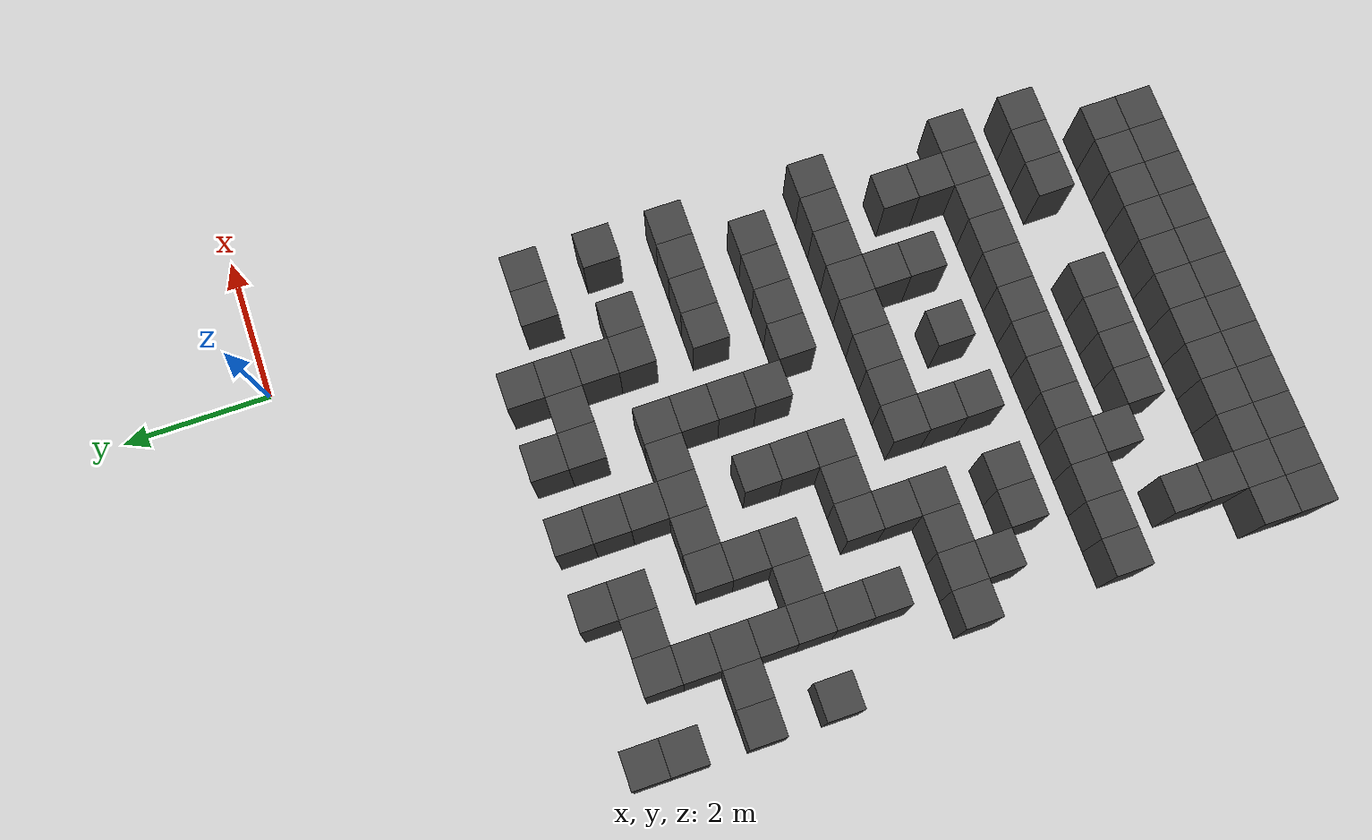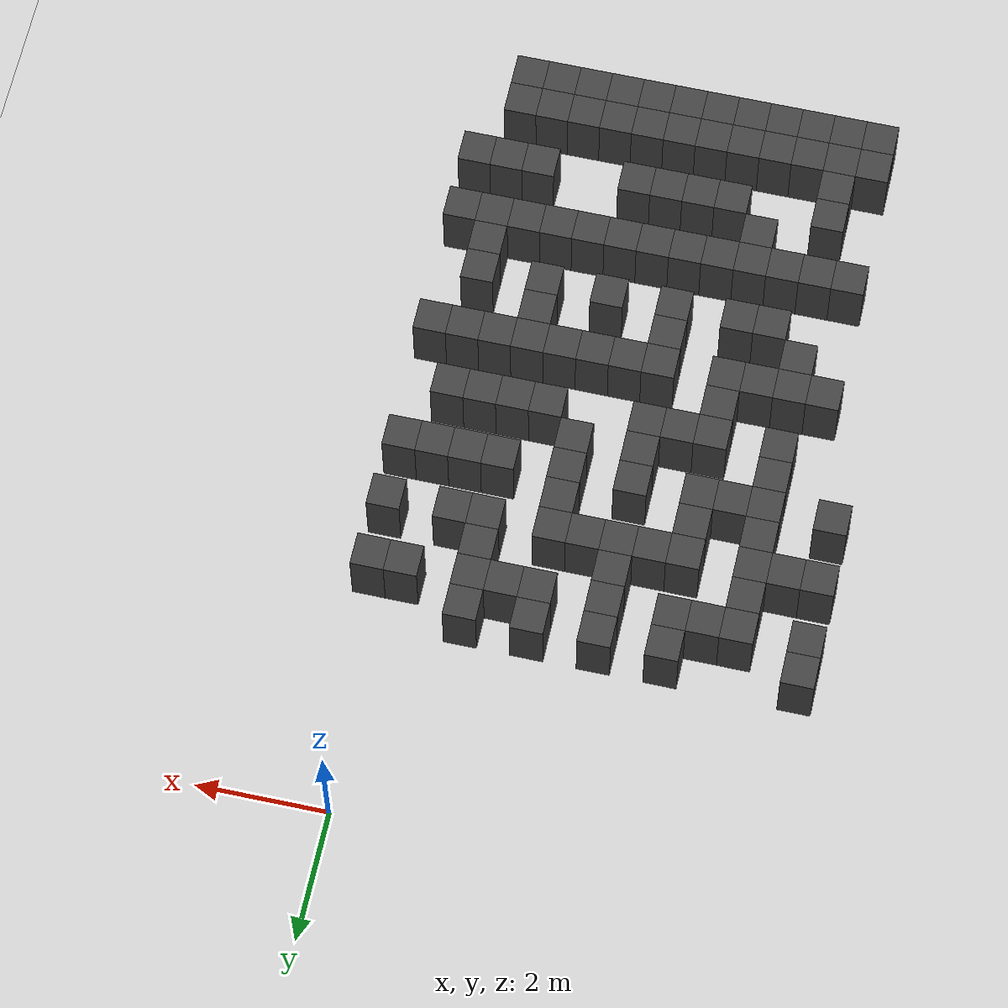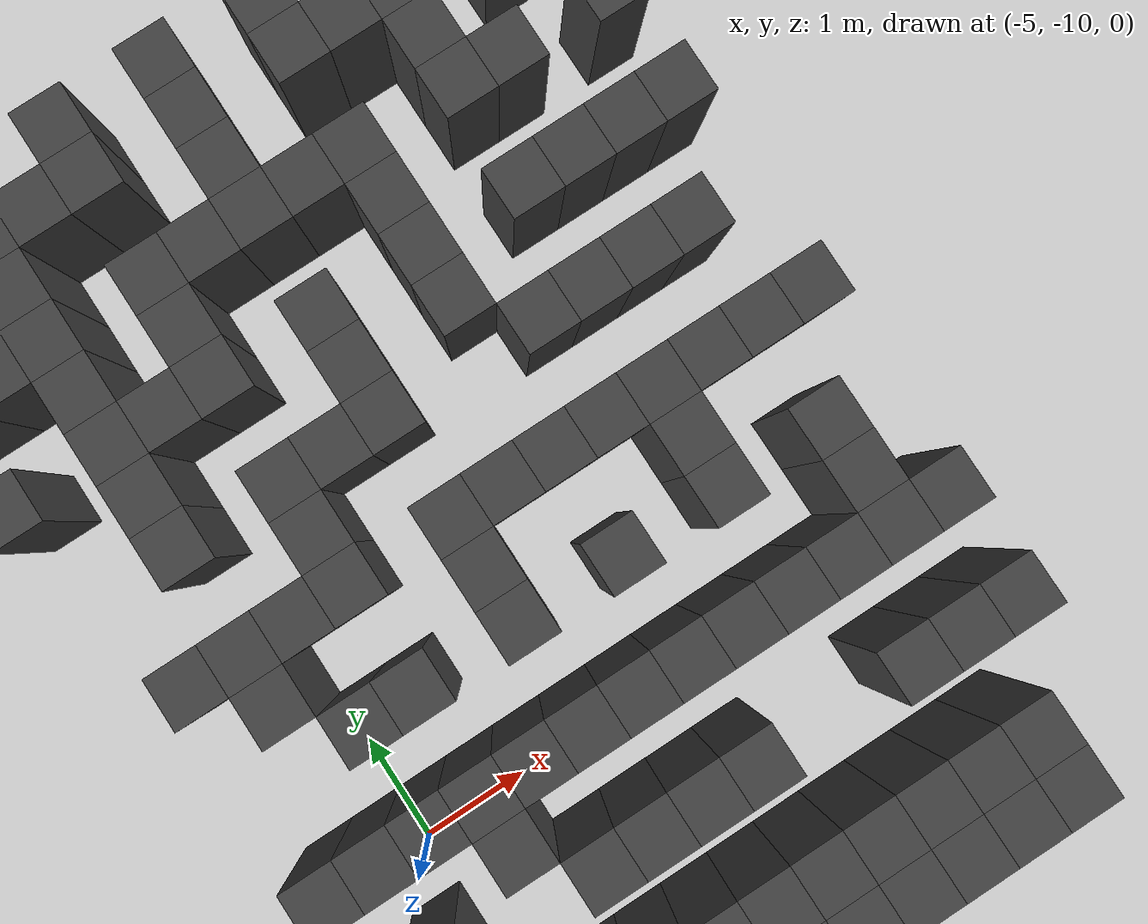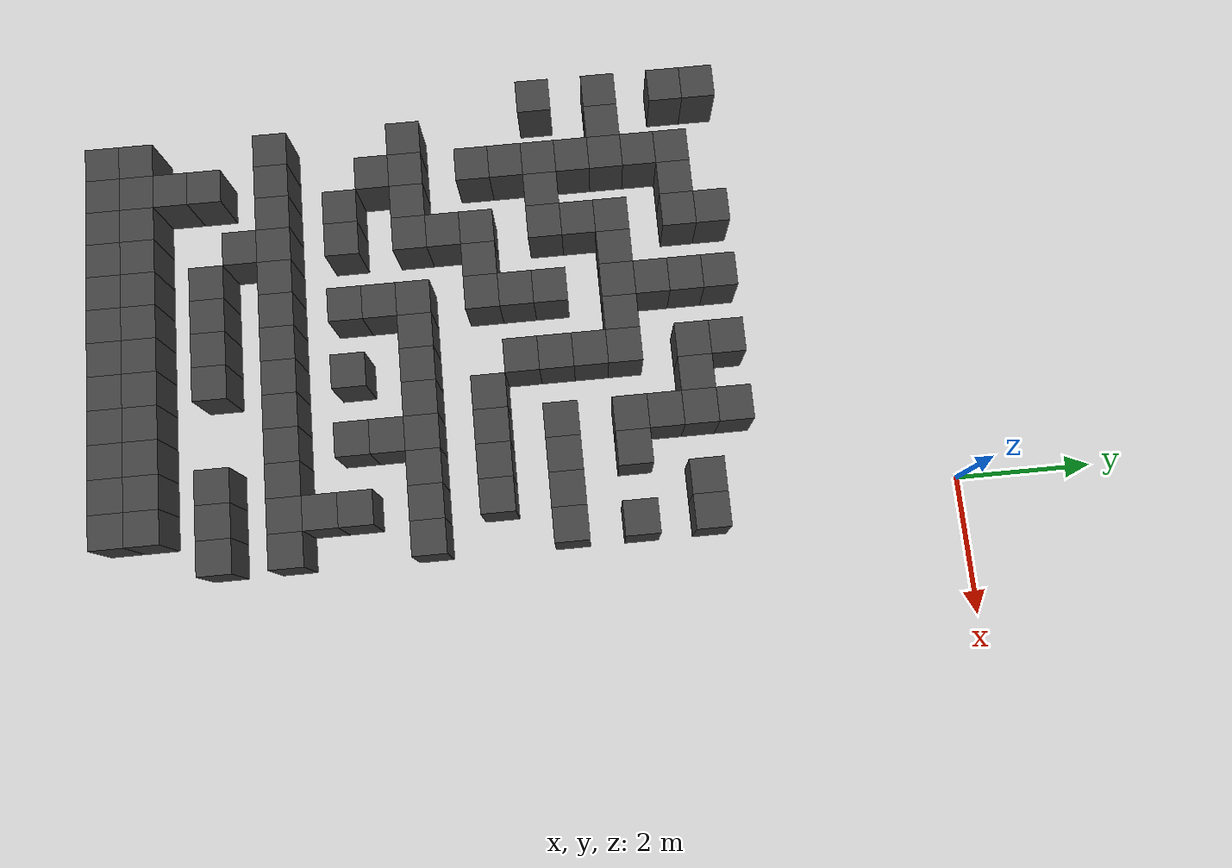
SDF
<sdf version="1.7">
 <world name="map_16048">
  <model name="ground_plane">
   <static>true</static>
   <link name="link">
    <collision name="collision">
     <geometry><plane><normal>0 0 1</normal><size>200 200</size></plane></geometry>
    </collision>
    <visual name="visual">
     <geometry><plane><normal>0 0 1</normal><size>200 200</size></plane></geometry>
     <material><ambient>0.8 0.8 0.8 1</ambient><diffuse>0.8 0.8 0.8 1</diffuse></material>
    </visual>
   </link>
  </model>
  <model name="maze_environment">
   <static>true</static>
   <link name="wall_751">
    <pose>-6.250 -3.250 0.500 0 0 0</pose>
    <collision name="col"><geometry><box><size>0.5 0.5 1.0</size></box></geometry></collision>
    <visual name="vis">
     <geometry><box><size>0.5 0.5 1.0</size></box></geometry>
     <material><ambient>0.15 0.15 0.15 1</ambient><diffuse>0.25 0.25 0.25 1</diffuse></material>
    </visual>
   </link>
   <link name="wall_752">
    <pose>-4.250 -3.250 0.500 0 0 0</pose>
    <collision name="col"><geometry><box><size>0.5 0.5 1.0</size></box></geometry></collision>
    <visual name="vis">
     <geometry><box><size>0.5 0.5 1.0</size></box></geometry>
     <material><ambient>0.15 0.15 0.15 1</ambient><diffuse>0.25 0.25 0.25 1</diffuse></material>
    </visual>
   </link>
   <link name="wall_753">
    <pose>-3.250 -3.250 0.500 0 0 0</pose>
    <collision name="col"><geometry><box><size>0.5 0.5 1.0</size></box></geometry></collision>
    <visual name="vis">
     <geometry><box><size>0.5 0.5 1.0</size></box></geometry>
     <material><ambient>0.15 0.15 0.15 1</ambient><diffuse>0.25 0.25 0.25 1</diffuse></material>
    </visual>
   </link>
   <link name="wall_754">
    <pose>-2.250 -3.250 0.500 0 0 0</pose>
    <collision name="col"><geometry><box><size>0.5 0.5 1.0</size></box></geometry></collision>
    <visual name="vis">
     <geometry><box><size>0.5 0.5 1.0</size></box></geometry>
     <material><ambient>0.15 0.15 0.15 1</ambient><diffuse>0.25 0.25 0.25 1</diffuse></material>
    </visual>
   </link>
   <link name="wall_755">
    <pose>-1.250 -3.250 0.500 0 0 0</pose>
    <collision name="col"><geometry><box><size>0.5 0.5 1.0</size></box></geometry></collision>
    <visual name="vis">
     <geometry><box><size>0.5 0.5 1.0</size></box></geometry>
     <material><ambient>0.15 0.15 0.15 1</ambient><diffuse>0.25 0.25 0.25 1</diffuse></material>
    </visual>
   </link>
   <link name="wall_768">
    <pose>-6.250 -3.750 0.500 0 0 0</pose>
    <collision name="col"><geometry><box><size>0.5 0.5 1.0</size></box></geometry></collision>
    <visual name="vis">
     <geometry><box><size>0.5 0.5 1.0</size></box></geometry>
     <material><ambient>0.15 0.15 0.15 1</ambient><diffuse>0.25 0.25 0.25 1</diffuse></material>
    </visual>
   </link>
   <link name="wall_769">
    <pose>-5.250 -3.750 0.500 0 0 0</pose>
    <collision name="col"><geometry><box><size>0.5 0.5 1.0</size></box></geometry></collision>
    <visual name="vis">
     <geometry><box><size>0.5 0.5 1.0</size></box></geometry>
     <material><ambient>0.15 0.15 0.15 1</ambient><diffuse>0.25 0.25 0.25 1</diffuse></material>
    </visual>
   </link>
   <link name="wall_770">
    <pose>-4.750 -3.750 0.500 0 0 0</pose>
    <collision name="col"><geometry><box><size>0.5 0.5 1.0</size></box></geometry></collision>
    <visual name="vis">
     <geometry><box><size>0.5 0.5 1.0</size></box></geometry>
     <material><ambient>0.15 0.15 0.15 1</ambient><diffuse>0.25 0.25 0.25 1</diffuse></material>
    </visual>
   </link>
   <link name="wall_771">
    <pose>-4.250 -3.750 0.500 0 0 0</pose>
    <collision name="col"><geometry><box><size>0.5 0.5 1.0</size></box></geometry></collision>
    <visual name="vis">
     <geometry><box><size>0.5 0.5 1.0</size></box></geometry>
     <material><ambient>0.15 0.15 0.15 1</ambient><diffuse>0.25 0.25 0.25 1</diffuse></material>
    </visual>
   </link>
   <link name="wall_772">
    <pose>-3.250 -3.750 0.500 0 0 0</pose>
    <collision name="col"><geometry><box><size>0.5 0.5 1.0</size></box></geometry></collision>
    <visual name="vis">
     <geometry><box><size>0.5 0.5 1.0</size></box></geometry>
     <material><ambient>0.15 0.15 0.15 1</ambient><diffuse>0.25 0.25 0.25 1</diffuse></material>
    </visual>
   </link>
   <link name="wall_773">
    <pose>-2.250 -3.750 0.500 0 0 0</pose>
    <collision name="col"><geometry><box><size>0.5 0.5 1.0</size></box></geometry></collision>
    <visual name="vis">
     <geometry><box><size>0.5 0.5 1.0</size></box></geometry>
     <material><ambient>0.15 0.15 0.15 1</ambient><diffuse>0.25 0.25 0.25 1</diffuse></material>
    </visual>
   </link>
   <link name="wall_774">
    <pose>-1.750 -3.750 0.500 0 0 0</pose>
    <collision name="col"><geometry><box><size>0.5 0.5 1.0</size></box></geometry></collision>
    <visual name="vis">
     <geometry><box><size>0.5 0.5 1.0</size></box></geometry>
     <material><ambient>0.15 0.15 0.15 1</ambient><diffuse>0.25 0.25 0.25 1</diffuse></material>
    </visual>
   </link>
   <link name="wall_775">
    <pose>-1.250 -3.750 0.500 0 0 0</pose>
    <collision name="col"><geometry><box><size>0.5 0.5 1.0</size></box></geometry></collision>
    <visual name="vis">
     <geometry><box><size>0.5 0.5 1.0</size></box></geometry>
     <material><ambient>0.15 0.15 0.15 1</ambient><diffuse>0.25 0.25 0.25 1</diffuse></material>
    </visual>
   </link>
   <link name="wall_776">
    <pose>-0.250 -3.750 0.500 0 0 0</pose>
    <collision name="col"><geometry><box><size>0.5 0.5 1.0</size></box></geometry></collision>
    <visual name="vis">
     <geometry><box><size>0.5 0.5 1.0</size></box></geometry>
     <material><ambient>0.15 0.15 0.15 1</ambient><diffuse>0.25 0.25 0.25 1</diffuse></material>
    </visual>
   </link>
   <link name="wall_777">
    <pose>0.250 -3.750 0.500 0 0 0</pose>
    <collision name="col"><geometry><box><size>0.5 0.5 1.0</size></box></geometry></collision>
    <visual name="vis">
     <geometry><box><size>0.5 0.5 1.0</size></box></geometry>
     <material><ambient>0.15 0.15 0.15 1</ambient><diffuse>0.25 0.25 0.25 1</diffuse></material>
    </visual>
   </link>
   <link name="wall_799">
    <pose>-5.250 -4.250 0.500 0 0 0</pose>
    <collision name="col"><geometry><box><size>0.5 0.5 1.0</size></box></geometry></collision>
    <visual name="vis">
     <geometry><box><size>0.5 0.5 1.0</size></box></geometry>
     <material><ambient>0.15 0.15 0.15 1</ambient><diffuse>0.25 0.25 0.25 1</diffuse></material>
    </visual>
   </link>
   <link name="wall_800">
    <pose>-3.250 -4.250 0.500 0 0 0</pose>
    <collision name="col"><geometry><box><size>0.5 0.5 1.0</size></box></geometry></collision>
    <visual name="vis">
     <geometry><box><size>0.5 0.5 1.0</size></box></geometry>
     <material><ambient>0.15 0.15 0.15 1</ambient><diffuse>0.25 0.25 0.25 1</diffuse></material>
    </visual>
   </link>
   <link name="wall_801">
    <pose>-1.250 -4.250 0.500 0 0 0</pose>
    <collision name="col"><geometry><box><size>0.5 0.5 1.0</size></box></geometry></collision>
    <visual name="vis">
     <geometry><box><size>0.5 0.5 1.0</size></box></geometry>
     <material><ambient>0.15 0.15 0.15 1</ambient><diffuse>0.25 0.25 0.25 1</diffuse></material>
    </visual>
   </link>
   <link name="wall_816">
    <pose>-6.250 -4.750 0.500 0 0 0</pose>
    <collision name="col"><geometry><box><size>0.5 0.5 1.0</size></box></geometry></collision>
    <visual name="vis">
     <geometry><box><size>0.5 0.5 1.0</size></box></geometry>
     <material><ambient>0.15 0.15 0.15 1</ambient><diffuse>0.25 0.25 0.25 1</diffuse></material>
    </visual>
   </link>
   <link name="wall_817">
    <pose>-5.750 -4.750 0.500 0 0 0</pose>
    <collision name="col"><geometry><box><size>0.5 0.5 1.0</size></box></geometry></collision>
    <visual name="vis">
     <geometry><box><size>0.5 0.5 1.0</size></box></geometry>
     <material><ambient>0.15 0.15 0.15 1</ambient><diffuse>0.25 0.25 0.25 1</diffuse></material>
    </visual>
   </link>
   <link name="wall_818">
    <pose>-5.250 -4.750 0.500 0 0 0</pose>
    <collision name="col"><geometry><box><size>0.5 0.5 1.0</size></box></geometry></collision>
    <visual name="vis">
     <geometry><box><size>0.5 0.5 1.0</size></box></geometry>
     <material><ambient>0.15 0.15 0.15 1</ambient><diffuse>0.25 0.25 0.25 1</diffuse></material>
    </visual>
   </link>
   <link name="wall_819">
    <pose>-4.250 -4.750 0.500 0 0 0</pose>
    <collision name="col"><geometry><box><size>0.5 0.5 1.0</size></box></geometry></collision>
    <visual name="vis">
     <geometry><box><size>0.5 0.5 1.0</size></box></geometry>
     <material><ambient>0.15 0.15 0.15 1</ambient><diffuse>0.25 0.25 0.25 1</diffuse></material>
    </visual>
   </link>
   <link name="wall_820">
    <pose>-3.750 -4.750 0.500 0 0 0</pose>
    <collision name="col"><geometry><box><size>0.5 0.5 1.0</size></box></geometry></collision>
    <visual name="vis">
     <geometry><box><size>0.5 0.5 1.0</size></box></geometry>
     <material><ambient>0.15 0.15 0.15 1</ambient><diffuse>0.25 0.25 0.25 1</diffuse></material>
    </visual>
   </link>
   <link name="wall_821">
    <pose>-3.250 -4.750 0.500 0 0 0</pose>
    <collision name="col"><geometry><box><size>0.5 0.5 1.0</size></box></geometry></collision>
    <visual name="vis">
     <geometry><box><size>0.5 0.5 1.0</size></box></geometry>
     <material><ambient>0.15 0.15 0.15 1</ambient><diffuse>0.25 0.25 0.25 1</diffuse></material>
    </visual>
   </link>
   <link name="wall_822">
    <pose>-2.750 -4.750 0.500 0 0 0</pose>
    <collision name="col"><geometry><box><size>0.5 0.5 1.0</size></box></geometry></collision>
    <visual name="vis">
     <geometry><box><size>0.5 0.5 1.0</size></box></geometry>
     <material><ambient>0.15 0.15 0.15 1</ambient><diffuse>0.25 0.25 0.25 1</diffuse></material>
    </visual>
   </link>
   <link name="wall_823">
    <pose>-2.250 -4.750 0.500 0 0 0</pose>
    <collision name="col"><geometry><box><size>0.5 0.5 1.0</size></box></geometry></collision>
    <visual name="vis">
     <geometry><box><size>0.5 0.5 1.0</size></box></geometry>
     <material><ambient>0.15 0.15 0.15 1</ambient><diffuse>0.25 0.25 0.25 1</diffuse></material>
    </visual>
   </link>
   <link name="wall_824">
    <pose>-1.250 -4.750 0.500 0 0 0</pose>
    <collision name="col"><geometry><box><size>0.5 0.5 1.0</size></box></geometry></collision>
    <visual name="vis">
     <geometry><box><size>0.5 0.5 1.0</size></box></geometry>
     <material><ambient>0.15 0.15 0.15 1</ambient><diffuse>0.25 0.25 0.25 1</diffuse></material>
    </visual>
   </link>
   <link name="wall_825">
    <pose>-0.750 -4.750 0.500 0 0 0</pose>
    <collision name="col"><geometry><box><size>0.5 0.5 1.0</size></box></geometry></collision>
    <visual name="vis">
     <geometry><box><size>0.5 0.5 1.0</size></box></geometry>
     <material><ambient>0.15 0.15 0.15 1</ambient><diffuse>0.25 0.25 0.25 1</diffuse></material>
    </visual>
   </link>
   <link name="wall_826">
    <pose>0.250 -4.750 0.500 0 0 0</pose>
    <collision name="col"><geometry><box><size>0.5 0.5 1.0</size></box></geometry></collision>
    <visual name="vis">
     <geometry><box><size>0.5 0.5 1.0</size></box></geometry>
     <material><ambient>0.15 0.15 0.15 1</ambient><diffuse>0.25 0.25 0.25 1</diffuse></material>
    </visual>
   </link>
   <link name="wall_847">
    <pose>-5.250 -5.250 0.500 0 0 0</pose>
    <collision name="col"><geometry><box><size>0.5 0.5 1.0</size></box></geometry></collision>
    <visual name="vis">
     <geometry><box><size>0.5 0.5 1.0</size></box></geometry>
     <material><ambient>0.15 0.15 0.15 1</ambient><diffuse>0.25 0.25 0.25 1</diffuse></material>
    </visual>
   </link>
   <link name="wall_848">
    <pose>-4.250 -5.250 0.500 0 0 0</pose>
    <collision name="col"><geometry><box><size>0.5 0.5 1.0</size></box></geometry></collision>
    <visual name="vis">
     <geometry><box><size>0.5 0.5 1.0</size></box></geometry>
     <material><ambient>0.15 0.15 0.15 1</ambient><diffuse>0.25 0.25 0.25 1</diffuse></material>
    </visual>
   </link>
   <link name="wall_849">
    <pose>-2.250 -5.250 0.500 0 0 0</pose>
    <collision name="col"><geometry><box><size>0.5 0.5 1.0</size></box></geometry></collision>
    <visual name="vis">
     <geometry><box><size>0.5 0.5 1.0</size></box></geometry>
     <material><ambient>0.15 0.15 0.15 1</ambient><diffuse>0.25 0.25 0.25 1</diffuse></material>
    </visual>
   </link>
   <link name="wall_863">
    <pose>-6.250 -5.750 0.500 0 0 0</pose>
    <collision name="col"><geometry><box><size>0.5 0.5 1.0</size></box></geometry></collision>
    <visual name="vis">
     <geometry><box><size>0.5 0.5 1.0</size></box></geometry>
     <material><ambient>0.15 0.15 0.15 1</ambient><diffuse>0.25 0.25 0.25 1</diffuse></material>
    </visual>
   </link>
   <link name="wall_864">
    <pose>-5.250 -5.750 0.500 0 0 0</pose>
    <collision name="col"><geometry><box><size>0.5 0.5 1.0</size></box></geometry></collision>
    <visual name="vis">
     <geometry><box><size>0.5 0.5 1.0</size></box></geometry>
     <material><ambient>0.15 0.15 0.15 1</ambient><diffuse>0.25 0.25 0.25 1</diffuse></material>
    </visual>
   </link>
   <link name="wall_865">
    <pose>-4.750 -5.750 0.500 0 0 0</pose>
    <collision name="col"><geometry><box><size>0.5 0.5 1.0</size></box></geometry></collision>
    <visual name="vis">
     <geometry><box><size>0.5 0.5 1.0</size></box></geometry>
     <material><ambient>0.15 0.15 0.15 1</ambient><diffuse>0.25 0.25 0.25 1</diffuse></material>
    </visual>
   </link>
   <link name="wall_866">
    <pose>-4.250 -5.750 0.500 0 0 0</pose>
    <collision name="col"><geometry><box><size>0.5 0.5 1.0</size></box></geometry></collision>
    <visual name="vis">
     <geometry><box><size>0.5 0.5 1.0</size></box></geometry>
     <material><ambient>0.15 0.15 0.15 1</ambient><diffuse>0.25 0.25 0.25 1</diffuse></material>
    </visual>
   </link>
   <link name="wall_867">
    <pose>-3.250 -5.750 0.500 0 0 0</pose>
    <collision name="col"><geometry><box><size>0.5 0.5 1.0</size></box></geometry></collision>
    <visual name="vis">
     <geometry><box><size>0.5 0.5 1.0</size></box></geometry>
     <material><ambient>0.15 0.15 0.15 1</ambient><diffuse>0.25 0.25 0.25 1</diffuse></material>
    </visual>
   </link>
   <link name="wall_868">
    <pose>-2.250 -5.750 0.500 0 0 0</pose>
    <collision name="col"><geometry><box><size>0.5 0.5 1.0</size></box></geometry></collision>
    <visual name="vis">
     <geometry><box><size>0.5 0.5 1.0</size></box></geometry>
     <material><ambient>0.15 0.15 0.15 1</ambient><diffuse>0.25 0.25 0.25 1</diffuse></material>
    </visual>
   </link>
   <link name="wall_869">
    <pose>-1.250 -5.750 0.500 0 0 0</pose>
    <collision name="col"><geometry><box><size>0.5 0.5 1.0</size></box></geometry></collision>
    <visual name="vis">
     <geometry><box><size>0.5 0.5 1.0</size></box></geometry>
     <material><ambient>0.15 0.15 0.15 1</ambient><diffuse>0.25 0.25 0.25 1</diffuse></material>
    </visual>
   </link>
   <link name="wall_870">
    <pose>-0.750 -5.750 0.500 0 0 0</pose>
    <collision name="col"><geometry><box><size>0.5 0.5 1.0</size></box></geometry></collision>
    <visual name="vis">
     <geometry><box><size>0.5 0.5 1.0</size></box></geometry>
     <material><ambient>0.15 0.15 0.15 1</ambient><diffuse>0.25 0.25 0.25 1</diffuse></material>
    </visual>
   </link>
   <link name="wall_871">
    <pose>-0.250 -5.750 0.500 0 0 0</pose>
    <collision name="col"><geometry><box><size>0.5 0.5 1.0</size></box></geometry></collision>
    <visual name="vis">
     <geometry><box><size>0.5 0.5 1.0</size></box></geometry>
     <material><ambient>0.15 0.15 0.15 1</ambient><diffuse>0.25 0.25 0.25 1</diffuse></material>
    </visual>
   </link>
   <link name="wall_872">
    <pose>0.250 -5.750 0.500 0 0 0</pose>
    <collision name="col"><geometry><box><size>0.5 0.5 1.0</size></box></geometry></collision>
    <visual name="vis">
     <geometry><box><size>0.5 0.5 1.0</size></box></geometry>
     <material><ambient>0.15 0.15 0.15 1</ambient><diffuse>0.25 0.25 0.25 1</diffuse></material>
    </visual>
   </link>
   <link name="wall_895">
    <pose>-5.250 -6.250 0.500 0 0 0</pose>
    <collision name="col"><geometry><box><size>0.5 0.5 1.0</size></box></geometry></collision>
    <visual name="vis">
     <geometry><box><size>0.5 0.5 1.0</size></box></geometry>
     <material><ambient>0.15 0.15 0.15 1</ambient><diffuse>0.25 0.25 0.25 1</diffuse></material>
    </visual>
   </link>
   <link name="wall_896">
    <pose>-3.250 -6.250 0.500 0 0 0</pose>
    <collision name="col"><geometry><box><size>0.5 0.5 1.0</size></box></geometry></collision>
    <visual name="vis">
     <geometry><box><size>0.5 0.5 1.0</size></box></geometry>
     <material><ambient>0.15 0.15 0.15 1</ambient><diffuse>0.25 0.25 0.25 1</diffuse></material>
    </visual>
   </link>
   <link name="wall_897">
    <pose>-2.250 -6.250 0.500 0 0 0</pose>
    <collision name="col"><geometry><box><size>0.5 0.5 1.0</size></box></geometry></collision>
    <visual name="vis">
     <geometry><box><size>0.5 0.5 1.0</size></box></geometry>
     <material><ambient>0.15 0.15 0.15 1</ambient><diffuse>0.25 0.25 0.25 1</diffuse></material>
    </visual>
   </link>
   <link name="wall_912">
    <pose>-5.250 -6.750 0.500 0 0 0</pose>
    <collision name="col"><geometry><box><size>0.5 0.5 1.0</size></box></geometry></collision>
    <visual name="vis">
     <geometry><box><size>0.5 0.5 1.0</size></box></geometry>
     <material><ambient>0.15 0.15 0.15 1</ambient><diffuse>0.25 0.25 0.25 1</diffuse></material>
    </visual>
   </link>
   <link name="wall_913">
    <pose>-4.250 -6.750 0.500 0 0 0</pose>
    <collision name="col"><geometry><box><size>0.5 0.5 1.0</size></box></geometry></collision>
    <visual name="vis">
     <geometry><box><size>0.5 0.5 1.0</size></box></geometry>
     <material><ambient>0.15 0.15 0.15 1</ambient><diffuse>0.25 0.25 0.25 1</diffuse></material>
    </visual>
   </link>
   <link name="wall_914">
    <pose>-3.750 -6.750 0.500 0 0 0</pose>
    <collision name="col"><geometry><box><size>0.5 0.5 1.0</size></box></geometry></collision>
    <visual name="vis">
     <geometry><box><size>0.5 0.5 1.0</size></box></geometry>
     <material><ambient>0.15 0.15 0.15 1</ambient><diffuse>0.25 0.25 0.25 1</diffuse></material>
    </visual>
   </link>
   <link name="wall_915">
    <pose>-3.250 -6.750 0.500 0 0 0</pose>
    <collision name="col"><geometry><box><size>0.5 0.5 1.0</size></box></geometry></collision>
    <visual name="vis">
     <geometry><box><size>0.5 0.5 1.0</size></box></geometry>
     <material><ambient>0.15 0.15 0.15 1</ambient><diffuse>0.25 0.25 0.25 1</diffuse></material>
    </visual>
   </link>
   <link name="wall_916">
    <pose>-1.750 -6.750 0.500 0 0 0</pose>
    <collision name="col"><geometry><box><size>0.5 0.5 1.0</size></box></geometry></collision>
    <visual name="vis">
     <geometry><box><size>0.5 0.5 1.0</size></box></geometry>
     <material><ambient>0.15 0.15 0.15 1</ambient><diffuse>0.25 0.25 0.25 1</diffuse></material>
    </visual>
   </link>
   <link name="wall_917">
    <pose>-1.250 -6.750 0.500 0 0 0</pose>
    <collision name="col"><geometry><box><size>0.5 0.5 1.0</size></box></geometry></collision>
    <visual name="vis">
     <geometry><box><size>0.5 0.5 1.0</size></box></geometry>
     <material><ambient>0.15 0.15 0.15 1</ambient><diffuse>0.25 0.25 0.25 1</diffuse></material>
    </visual>
   </link>
   <link name="wall_918">
    <pose>-0.750 -6.750 0.500 0 0 0</pose>
    <collision name="col"><geometry><box><size>0.5 0.5 1.0</size></box></geometry></collision>
    <visual name="vis">
     <geometry><box><size>0.5 0.5 1.0</size></box></geometry>
     <material><ambient>0.15 0.15 0.15 1</ambient><diffuse>0.25 0.25 0.25 1</diffuse></material>
    </visual>
   </link>
   <link name="wall_919">
    <pose>-0.250 -6.750 0.500 0 0 0</pose>
    <collision name="col"><geometry><box><size>0.5 0.5 1.0</size></box></geometry></collision>
    <visual name="vis">
     <geometry><box><size>0.5 0.5 1.0</size></box></geometry>
     <material><ambient>0.15 0.15 0.15 1</ambient><diffuse>0.25 0.25 0.25 1</diffuse></material>
    </visual>
   </link>
   <link name="wall_938">
    <pose>-4.250 -7.250 0.500 0 0 0</pose>
    <collision name="col"><geometry><box><size>0.5 0.5 1.0</size></box></geometry></collision>
    <visual name="vis">
     <geometry><box><size>0.5 0.5 1.0</size></box></geometry>
     <material><ambient>0.15 0.15 0.15 1</ambient><diffuse>0.25 0.25 0.25 1</diffuse></material>
    </visual>
   </link>
   <link name="wall_954">
    <pose>-5.750 -7.750 0.500 0 0 0</pose>
    <collision name="col"><geometry><box><size>0.5 0.5 1.0</size></box></geometry></collision>
    <visual name="vis">
     <geometry><box><size>0.5 0.5 1.0</size></box></geometry>
     <material><ambient>0.15 0.15 0.15 1</ambient><diffuse>0.25 0.25 0.25 1</diffuse></material>
    </visual>
   </link>
   <link name="wall_955">
    <pose>-5.250 -7.750 0.500 0 0 0</pose>
    <collision name="col"><geometry><box><size>0.5 0.5 1.0</size></box></geometry></collision>
    <visual name="vis">
     <geometry><box><size>0.5 0.5 1.0</size></box></geometry>
     <material><ambient>0.15 0.15 0.15 1</ambient><diffuse>0.25 0.25 0.25 1</diffuse></material>
    </visual>
   </link>
   <link name="wall_956">
    <pose>-4.750 -7.750 0.500 0 0 0</pose>
    <collision name="col"><geometry><box><size>0.5 0.5 1.0</size></box></geometry></collision>
    <visual name="vis">
     <geometry><box><size>0.5 0.5 1.0</size></box></geometry>
     <material><ambient>0.15 0.15 0.15 1</ambient><diffuse>0.25 0.25 0.25 1</diffuse></material>
    </visual>
   </link>
   <link name="wall_957">
    <pose>-4.250 -7.750 0.500 0 0 0</pose>
    <collision name="col"><geometry><box><size>0.5 0.5 1.0</size></box></geometry></collision>
    <visual name="vis">
     <geometry><box><size>0.5 0.5 1.0</size></box></geometry>
     <material><ambient>0.15 0.15 0.15 1</ambient><diffuse>0.25 0.25 0.25 1</diffuse></material>
    </visual>
   </link>
   <link name="wall_958">
    <pose>-3.250 -7.750 0.500 0 0 0</pose>
    <collision name="col"><geometry><box><size>0.5 0.5 1.0</size></box></geometry></collision>
    <visual name="vis">
     <geometry><box><size>0.5 0.5 1.0</size></box></geometry>
     <material><ambient>0.15 0.15 0.15 1</ambient><diffuse>0.25 0.25 0.25 1</diffuse></material>
    </visual>
   </link>
   <link name="wall_959">
    <pose>-2.750 -7.750 0.500 0 0 0</pose>
    <collision name="col"><geometry><box><size>0.5 0.5 1.0</size></box></geometry></collision>
    <visual name="vis">
     <geometry><box><size>0.5 0.5 1.0</size></box></geometry>
     <material><ambient>0.15 0.15 0.15 1</ambient><diffuse>0.25 0.25 0.25 1</diffuse></material>
    </visual>
   </link>
   <link name="wall_960">
    <pose>-2.250 -7.750 0.500 0 0 0</pose>
    <collision name="col"><geometry><box><size>0.5 0.5 1.0</size></box></geometry></collision>
    <visual name="vis">
     <geometry><box><size>0.5 0.5 1.0</size></box></geometry>
     <material><ambient>0.15 0.15 0.15 1</ambient><diffuse>0.25 0.25 0.25 1</diffuse></material>
    </visual>
   </link>
   <link name="wall_961">
    <pose>-1.750 -7.750 0.500 0 0 0</pose>
    <collision name="col"><geometry><box><size>0.5 0.5 1.0</size></box></geometry></collision>
    <visual name="vis">
     <geometry><box><size>0.5 0.5 1.0</size></box></geometry>
     <material><ambient>0.15 0.15 0.15 1</ambient><diffuse>0.25 0.25 0.25 1</diffuse></material>
    </visual>
   </link>
   <link name="wall_962">
    <pose>-1.250 -7.750 0.500 0 0 0</pose>
    <collision name="col"><geometry><box><size>0.5 0.5 1.0</size></box></geometry></collision>
    <visual name="vis">
     <geometry><box><size>0.5 0.5 1.0</size></box></geometry>
     <material><ambient>0.15 0.15 0.15 1</ambient><diffuse>0.25 0.25 0.25 1</diffuse></material>
    </visual>
   </link>
   <link name="wall_963">
    <pose>-0.750 -7.750 0.500 0 0 0</pose>
    <collision name="col"><geometry><box><size>0.5 0.5 1.0</size></box></geometry></collision>
    <visual name="vis">
     <geometry><box><size>0.5 0.5 1.0</size></box></geometry>
     <material><ambient>0.15 0.15 0.15 1</ambient><diffuse>0.25 0.25 0.25 1</diffuse></material>
    </visual>
   </link>
   <link name="wall_964">
    <pose>-0.250 -7.750 0.500 0 0 0</pose>
    <collision name="col"><geometry><box><size>0.5 0.5 1.0</size></box></geometry></collision>
    <visual name="vis">
     <geometry><box><size>0.5 0.5 1.0</size></box></geometry>
     <material><ambient>0.15 0.15 0.15 1</ambient><diffuse>0.25 0.25 0.25 1</diffuse></material>
    </visual>
   </link>
   <link name="wall_965">
    <pose>0.250 -7.750 0.500 0 0 0</pose>
    <collision name="col"><geometry><box><size>0.5 0.5 1.0</size></box></geometry></collision>
    <visual name="vis">
     <geometry><box><size>0.5 0.5 1.0</size></box></geometry>
     <material><ambient>0.15 0.15 0.15 1</ambient><diffuse>0.25 0.25 0.25 1</diffuse></material>
    </visual>
   </link>
   <link name="wall_984">
    <pose>-5.250 -8.250 0.500 0 0 0</pose>
    <collision name="col"><geometry><box><size>0.5 0.5 1.0</size></box></geometry></collision>
    <visual name="vis">
     <geometry><box><size>0.5 0.5 1.0</size></box></geometry>
     <material><ambient>0.15 0.15 0.15 1</ambient><diffuse>0.25 0.25 0.25 1</diffuse></material>
    </visual>
   </link>
   <link name="wall_985">
    <pose>-3.250 -8.250 0.500 0 0 0</pose>
    <collision name="col"><geometry><box><size>0.5 0.5 1.0</size></box></geometry></collision>
    <visual name="vis">
     <geometry><box><size>0.5 0.5 1.0</size></box></geometry>
     <material><ambient>0.15 0.15 0.15 1</ambient><diffuse>0.25 0.25 0.25 1</diffuse></material>
    </visual>
   </link>
   <link name="wall_986">
    <pose>-1.250 -8.250 0.500 0 0 0</pose>
    <collision name="col"><geometry><box><size>0.5 0.5 1.0</size></box></geometry></collision>
    <visual name="vis">
     <geometry><box><size>0.5 0.5 1.0</size></box></geometry>
     <material><ambient>0.15 0.15 0.15 1</ambient><diffuse>0.25 0.25 0.25 1</diffuse></material>
    </visual>
   </link>
   <link name="wall_1005">
    <pose>-4.750 -8.750 0.500 0 0 0</pose>
    <collision name="col"><geometry><box><size>0.5 0.5 1.0</size></box></geometry></collision>
    <visual name="vis">
     <geometry><box><size>0.5 0.5 1.0</size></box></geometry>
     <material><ambient>0.15 0.15 0.15 1</ambient><diffuse>0.25 0.25 0.25 1</diffuse></material>
    </visual>
   </link>
   <link name="wall_1006">
    <pose>-4.250 -8.750 0.500 0 0 0</pose>
    <collision name="col"><geometry><box><size>0.5 0.5 1.0</size></box></geometry></collision>
    <visual name="vis">
     <geometry><box><size>0.5 0.5 1.0</size></box></geometry>
     <material><ambient>0.15 0.15 0.15 1</ambient><diffuse>0.25 0.25 0.25 1</diffuse></material>
    </visual>
   </link>
   <link name="wall_1007">
    <pose>-3.250 -8.750 0.500 0 0 0</pose>
    <collision name="col"><geometry><box><size>0.5 0.5 1.0</size></box></geometry></collision>
    <visual name="vis">
     <geometry><box><size>0.5 0.5 1.0</size></box></geometry>
     <material><ambient>0.15 0.15 0.15 1</ambient><diffuse>0.25 0.25 0.25 1</diffuse></material>
    </visual>
   </link>
   <link name="wall_1008">
    <pose>-2.250 -8.750 0.500 0 0 0</pose>
    <collision name="col"><geometry><box><size>0.5 0.5 1.0</size></box></geometry></collision>
    <visual name="vis">
     <geometry><box><size>0.5 0.5 1.0</size></box></geometry>
     <material><ambient>0.15 0.15 0.15 1</ambient><diffuse>0.25 0.25 0.25 1</diffuse></material>
    </visual>
   </link>
   <link name="wall_1009">
    <pose>-1.250 -8.750 0.500 0 0 0</pose>
    <collision name="col"><geometry><box><size>0.5 0.5 1.0</size></box></geometry></collision>
    <visual name="vis">
     <geometry><box><size>0.5 0.5 1.0</size></box></geometry>
     <material><ambient>0.15 0.15 0.15 1</ambient><diffuse>0.25 0.25 0.25 1</diffuse></material>
    </visual>
   </link>
   <link name="wall_1010">
    <pose>-0.250 -8.750 0.500 0 0 0</pose>
    <collision name="col"><geometry><box><size>0.5 0.5 1.0</size></box></geometry></collision>
    <visual name="vis">
     <geometry><box><size>0.5 0.5 1.0</size></box></geometry>
     <material><ambient>0.15 0.15 0.15 1</ambient><diffuse>0.25 0.25 0.25 1</diffuse></material>
    </visual>
   </link>
   <link name="wall_1035">
    <pose>-0.250 -9.250 0.500 0 0 0</pose>
    <collision name="col"><geometry><box><size>0.5 0.5 1.0</size></box></geometry></collision>
    <visual name="vis">
     <geometry><box><size>0.5 0.5 1.0</size></box></geometry>
     <material><ambient>0.15 0.15 0.15 1</ambient><diffuse>0.25 0.25 0.25 1</diffuse></material>
    </visual>
   </link>
   <link name="wall_1050">
    <pose>-5.750 -9.750 0.500 0 0 0</pose>
    <collision name="col"><geometry><box><size>0.5 0.5 1.0</size></box></geometry></collision>
    <visual name="vis">
     <geometry><box><size>0.5 0.5 1.0</size></box></geometry>
     <material><ambient>0.15 0.15 0.15 1</ambient><diffuse>0.25 0.25 0.25 1</diffuse></material>
    </visual>
   </link>
   <link name="wall_1051">
    <pose>-5.250 -9.750 0.500 0 0 0</pose>
    <collision name="col"><geometry><box><size>0.5 0.5 1.0</size></box></geometry></collision>
    <visual name="vis">
     <geometry><box><size>0.5 0.5 1.0</size></box></geometry>
     <material><ambient>0.15 0.15 0.15 1</ambient><diffuse>0.25 0.25 0.25 1</diffuse></material>
    </visual>
   </link>
   <link name="wall_1052">
    <pose>-4.750 -9.750 0.500 0 0 0</pose>
    <collision name="col"><geometry><box><size>0.5 0.5 1.0</size></box></geometry></collision>
    <visual name="vis">
     <geometry><box><size>0.5 0.5 1.0</size></box></geometry>
     <material><ambient>0.15 0.15 0.15 1</ambient><diffuse>0.25 0.25 0.25 1</diffuse></material>
    </visual>
   </link>
   <link name="wall_1053">
    <pose>-4.250 -9.750 0.500 0 0 0</pose>
    <collision name="col"><geometry><box><size>0.5 0.5 1.0</size></box></geometry></collision>
    <visual name="vis">
     <geometry><box><size>0.5 0.5 1.0</size></box></geometry>
     <material><ambient>0.15 0.15 0.15 1</ambient><diffuse>0.25 0.25 0.25 1</diffuse></material>
    </visual>
   </link>
   <link name="wall_1054">
    <pose>-3.750 -9.750 0.500 0 0 0</pose>
    <collision name="col"><geometry><box><size>0.5 0.5 1.0</size></box></geometry></collision>
    <visual name="vis">
     <geometry><box><size>0.5 0.5 1.0</size></box></geometry>
     <material><ambient>0.15 0.15 0.15 1</ambient><diffuse>0.25 0.25 0.25 1</diffuse></material>
    </visual>
   </link>
   <link name="wall_1055">
    <pose>-3.250 -9.750 0.500 0 0 0</pose>
    <collision name="col"><geometry><box><size>0.5 0.5 1.0</size></box></geometry></collision>
    <visual name="vis">
     <geometry><box><size>0.5 0.5 1.0</size></box></geometry>
     <material><ambient>0.15 0.15 0.15 1</ambient><diffuse>0.25 0.25 0.25 1</diffuse></material>
    </visual>
   </link>
   <link name="wall_1056">
    <pose>-2.750 -9.750 0.500 0 0 0</pose>
    <collision name="col"><geometry><box><size>0.5 0.5 1.0</size></box></geometry></collision>
    <visual name="vis">
     <geometry><box><size>0.5 0.5 1.0</size></box></geometry>
     <material><ambient>0.15 0.15 0.15 1</ambient><diffuse>0.25 0.25 0.25 1</diffuse></material>
    </visual>
   </link>
   <link name="wall_1057">
    <pose>-2.250 -9.750 0.500 0 0 0</pose>
    <collision name="col"><geometry><box><size>0.5 0.5 1.0</size></box></geometry></collision>
    <visual name="vis">
     <geometry><box><size>0.5 0.5 1.0</size></box></geometry>
     <material><ambient>0.15 0.15 0.15 1</ambient><diffuse>0.25 0.25 0.25 1</diffuse></material>
    </visual>
   </link>
   <link name="wall_1058">
    <pose>-1.750 -9.750 0.500 0 0 0</pose>
    <collision name="col"><geometry><box><size>0.5 0.5 1.0</size></box></geometry></collision>
    <visual name="vis">
     <geometry><box><size>0.5 0.5 1.0</size></box></geometry>
     <material><ambient>0.15 0.15 0.15 1</ambient><diffuse>0.25 0.25 0.25 1</diffuse></material>
    </visual>
   </link>
   <link name="wall_1059">
    <pose>-1.250 -9.750 0.500 0 0 0</pose>
    <collision name="col"><geometry><box><size>0.5 0.5 1.0</size></box></geometry></collision>
    <visual name="vis">
     <geometry><box><size>0.5 0.5 1.0</size></box></geometry>
     <material><ambient>0.15 0.15 0.15 1</ambient><diffuse>0.25 0.25 0.25 1</diffuse></material>
    </visual>
   </link>
   <link name="wall_1060">
    <pose>-0.750 -9.750 0.500 0 0 0</pose>
    <collision name="col"><geometry><box><size>0.5 0.5 1.0</size></box></geometry></collision>
    <visual name="vis">
     <geometry><box><size>0.5 0.5 1.0</size></box></geometry>
     <material><ambient>0.15 0.15 0.15 1</ambient><diffuse>0.25 0.25 0.25 1</diffuse></material>
    </visual>
   </link>
   <link name="wall_1061">
    <pose>-0.250 -9.750 0.500 0 0 0</pose>
    <collision name="col"><geometry><box><size>0.5 0.5 1.0</size></box></geometry></collision>
    <visual name="vis">
     <geometry><box><size>0.5 0.5 1.0</size></box></geometry>
     <material><ambient>0.15 0.15 0.15 1</ambient><diffuse>0.25 0.25 0.25 1</diffuse></material>
    </visual>
   </link>
   <link name="wall_1062">
    <pose>0.250 -9.750 0.500 0 0 0</pose>
    <collision name="col"><geometry><box><size>0.5 0.5 1.0</size></box></geometry></collision>
    <visual name="vis">
     <geometry><box><size>0.5 0.5 1.0</size></box></geometry>
     <material><ambient>0.15 0.15 0.15 1</ambient><diffuse>0.25 0.25 0.25 1</diffuse></material>
    </visual>
   </link>
   <link name="wall_1087">
    <pose>-4.250 -10.250 0.500 0 0 0</pose>
    <collision name="col"><geometry><box><size>0.5 0.5 1.0</size></box></geometry></collision>
    <visual name="vis">
     <geometry><box><size>0.5 0.5 1.0</size></box></geometry>
     <material><ambient>0.15 0.15 0.15 1</ambient><diffuse>0.25 0.25 0.25 1</diffuse></material>
    </visual>
   </link>
   <link name="wall_1100">
    <pose>-5.250 -10.750 0.500 0 0 0</pose>
    <collision name="col"><geometry><box><size>0.5 0.5 1.0</size></box></geometry></collision>
    <visual name="vis">
     <geometry><box><size>0.5 0.5 1.0</size></box></geometry>
     <material><ambient>0.15 0.15 0.15 1</ambient><diffuse>0.25 0.25 0.25 1</diffuse></material>
    </visual>
   </link>
   <link name="wall_1101">
    <pose>-3.750 -10.750 0.500 0 0 0</pose>
    <collision name="col"><geometry><box><size>0.5 0.5 1.0</size></box></geometry></collision>
    <visual name="vis">
     <geometry><box><size>0.5 0.5 1.0</size></box></geometry>
     <material><ambient>0.15 0.15 0.15 1</ambient><diffuse>0.25 0.25 0.25 1</diffuse></material>
    </visual>
   </link>
   <link name="wall_1102">
    <pose>-3.250 -10.750 0.500 0 0 0</pose>
    <collision name="col"><geometry><box><size>0.5 0.5 1.0</size></box></geometry></collision>
    <visual name="vis">
     <geometry><box><size>0.5 0.5 1.0</size></box></geometry>
     <material><ambient>0.15 0.15 0.15 1</ambient><diffuse>0.25 0.25 0.25 1</diffuse></material>
    </visual>
   </link>
   <link name="wall_1103">
    <pose>-2.750 -10.750 0.500 0 0 0</pose>
    <collision name="col"><geometry><box><size>0.5 0.5 1.0</size></box></geometry></collision>
    <visual name="vis">
     <geometry><box><size>0.5 0.5 1.0</size></box></geometry>
     <material><ambient>0.15 0.15 0.15 1</ambient><diffuse>0.25 0.25 0.25 1</diffuse></material>
    </visual>
   </link>
   <link name="wall_1104">
    <pose>-2.250 -10.750 0.500 0 0 0</pose>
    <collision name="col"><geometry><box><size>0.5 0.5 1.0</size></box></geometry></collision>
    <visual name="vis">
     <geometry><box><size>0.5 0.5 1.0</size></box></geometry>
     <material><ambient>0.15 0.15 0.15 1</ambient><diffuse>0.25 0.25 0.25 1</diffuse></material>
    </visual>
   </link>
   <link name="wall_1105">
    <pose>-0.750 -10.750 0.500 0 0 0</pose>
    <collision name="col"><geometry><box><size>0.5 0.5 1.0</size></box></geometry></collision>
    <visual name="vis">
     <geometry><box><size>0.5 0.5 1.0</size></box></geometry>
     <material><ambient>0.15 0.15 0.15 1</ambient><diffuse>0.25 0.25 0.25 1</diffuse></material>
    </visual>
   </link>
   <link name="wall_1106">
    <pose>-0.250 -10.750 0.500 0 0 0</pose>
    <collision name="col"><geometry><box><size>0.5 0.5 1.0</size></box></geometry></collision>
    <visual name="vis">
     <geometry><box><size>0.5 0.5 1.0</size></box></geometry>
     <material><ambient>0.15 0.15 0.15 1</ambient><diffuse>0.25 0.25 0.25 1</diffuse></material>
    </visual>
   </link>
   <link name="wall_1107">
    <pose>0.250 -10.750 0.500 0 0 0</pose>
    <collision name="col"><geometry><box><size>0.5 0.5 1.0</size></box></geometry></collision>
    <visual name="vis">
     <geometry><box><size>0.5 0.5 1.0</size></box></geometry>
     <material><ambient>0.15 0.15 0.15 1</ambient><diffuse>0.25 0.25 0.25 1</diffuse></material>
    </visual>
   </link>
   <link name="wall_1123">
    <pose>-5.250 -11.250 0.500 0 0 0</pose>
    <collision name="col"><geometry><box><size>0.5 0.5 1.0</size></box></geometry></collision>
    <visual name="vis">
     <geometry><box><size>0.5 0.5 1.0</size></box></geometry>
     <material><ambient>0.15 0.15 0.15 1</ambient><diffuse>0.25 0.25 0.25 1</diffuse></material>
    </visual>
   </link>
   <link name="wall_1141">
    <pose>-5.750 -11.750 0.500 0 0 0</pose>
    <collision name="col"><geometry><box><size>0.5 0.5 1.0</size></box></geometry></collision>
    <visual name="vis">
     <geometry><box><size>0.5 0.5 1.0</size></box></geometry>
     <material><ambient>0.15 0.15 0.15 1</ambient><diffuse>0.25 0.25 0.25 1</diffuse></material>
    </visual>
   </link>
   <link name="wall_1142">
    <pose>-5.250 -11.750 0.500 0 0 0</pose>
    <collision name="col"><geometry><box><size>0.5 0.5 1.0</size></box></geometry></collision>
    <visual name="vis">
     <geometry><box><size>0.5 0.5 1.0</size></box></geometry>
     <material><ambient>0.15 0.15 0.15 1</ambient><diffuse>0.25 0.25 0.25 1</diffuse></material>
    </visual>
   </link>
   <link name="wall_1143">
    <pose>-4.750 -11.750 0.500 0 0 0</pose>
    <collision name="col"><geometry><box><size>0.5 0.5 1.0</size></box></geometry></collision>
    <visual name="vis">
     <geometry><box><size>0.5 0.5 1.0</size></box></geometry>
     <material><ambient>0.15 0.15 0.15 1</ambient><diffuse>0.25 0.25 0.25 1</diffuse></material>
    </visual>
   </link>
   <link name="wall_1144">
    <pose>-4.250 -11.750 0.500 0 0 0</pose>
    <collision name="col"><geometry><box><size>0.5 0.5 1.0</size></box></geometry></collision>
    <visual name="vis">
     <geometry><box><size>0.5 0.5 1.0</size></box></geometry>
     <material><ambient>0.15 0.15 0.15 1</ambient><diffuse>0.25 0.25 0.25 1</diffuse></material>
    </visual>
   </link>
   <link name="wall_1145">
    <pose>-3.750 -11.750 0.500 0 0 0</pose>
    <collision name="col"><geometry><box><size>0.5 0.5 1.0</size></box></geometry></collision>
    <visual name="vis">
     <geometry><box><size>0.5 0.5 1.0</size></box></geometry>
     <material><ambient>0.15 0.15 0.15 1</ambient><diffuse>0.25 0.25 0.25 1</diffuse></material>
    </visual>
   </link>
   <link name="wall_1146">
    <pose>-3.250 -11.750 0.500 0 0 0</pose>
    <collision name="col"><geometry><box><size>0.5 0.5 1.0</size></box></geometry></collision>
    <visual name="vis">
     <geometry><box><size>0.5 0.5 1.0</size></box></geometry>
     <material><ambient>0.15 0.15 0.15 1</ambient><diffuse>0.25 0.25 0.25 1</diffuse></material>
    </visual>
   </link>
   <link name="wall_1147">
    <pose>-2.750 -11.750 0.500 0 0 0</pose>
    <collision name="col"><geometry><box><size>0.5 0.5 1.0</size></box></geometry></collision>
    <visual name="vis">
     <geometry><box><size>0.5 0.5 1.0</size></box></geometry>
     <material><ambient>0.15 0.15 0.15 1</ambient><diffuse>0.25 0.25 0.25 1</diffuse></material>
    </visual>
   </link>
   <link name="wall_1148">
    <pose>-2.250 -11.750 0.500 0 0 0</pose>
    <collision name="col"><geometry><box><size>0.5 0.5 1.0</size></box></geometry></collision>
    <visual name="vis">
     <geometry><box><size>0.5 0.5 1.0</size></box></geometry>
     <material><ambient>0.15 0.15 0.15 1</ambient><diffuse>0.25 0.25 0.25 1</diffuse></material>
    </visual>
   </link>
   <link name="wall_1149">
    <pose>-1.750 -11.750 0.500 0 0 0</pose>
    <collision name="col"><geometry><box><size>0.5 0.5 1.0</size></box></geometry></collision>
    <visual name="vis">
     <geometry><box><size>0.5 0.5 1.0</size></box></geometry>
     <material><ambient>0.15 0.15 0.15 1</ambient><diffuse>0.25 0.25 0.25 1</diffuse></material>
    </visual>
   </link>
   <link name="wall_1150">
    <pose>-1.250 -11.750 0.500 0 0 0</pose>
    <collision name="col"><geometry><box><size>0.5 0.5 1.0</size></box></geometry></collision>
    <visual name="vis">
     <geometry><box><size>0.5 0.5 1.0</size></box></geometry>
     <material><ambient>0.15 0.15 0.15 1</ambient><diffuse>0.25 0.25 0.25 1</diffuse></material>
    </visual>
   </link>
   <link name="wall_1151">
    <pose>-0.750 -11.750 0.500 0 0 0</pose>
    <collision name="col"><geometry><box><size>0.5 0.5 1.0</size></box></geometry></collision>
    <visual name="vis">
     <geometry><box><size>0.5 0.5 1.0</size></box></geometry>
     <material><ambient>0.15 0.15 0.15 1</ambient><diffuse>0.25 0.25 0.25 1</diffuse></material>
    </visual>
   </link>
   <link name="wall_1152">
    <pose>-0.250 -11.750 0.500 0 0 0</pose>
    <collision name="col"><geometry><box><size>0.5 0.5 1.0</size></box></geometry></collision>
    <visual name="vis">
     <geometry><box><size>0.5 0.5 1.0</size></box></geometry>
     <material><ambient>0.15 0.15 0.15 1</ambient><diffuse>0.25 0.25 0.25 1</diffuse></material>
    </visual>
   </link>
   <link name="wall_1189">
    <pose>-5.750 -12.250 0.500 0 0 0</pose>
    <collision name="col"><geometry><box><size>0.5 0.5 1.0</size></box></geometry></collision>
    <visual name="vis">
     <geometry><box><size>0.5 0.5 1.0</size></box></geometry>
     <material><ambient>0.15 0.15 0.15 1</ambient><diffuse>0.25 0.25 0.25 1</diffuse></material>
    </visual>
   </link>
   <link name="wall_1190">
    <pose>-5.250 -12.250 0.500 0 0 0</pose>
    <collision name="col"><geometry><box><size>0.5 0.5 1.0</size></box></geometry></collision>
    <visual name="vis">
     <geometry><box><size>0.5 0.5 1.0</size></box></geometry>
     <material><ambient>0.15 0.15 0.15 1</ambient><diffuse>0.25 0.25 0.25 1</diffuse></material>
    </visual>
   </link>
   <link name="wall_1191">
    <pose>-4.750 -12.250 0.500 0 0 0</pose>
    <collision name="col"><geometry><box><size>0.5 0.5 1.0</size></box></geometry></collision>
    <visual name="vis">
     <geometry><box><size>0.5 0.5 1.0</size></box></geometry>
     <material><ambient>0.15 0.15 0.15 1</ambient><diffuse>0.25 0.25 0.25 1</diffuse></material>
    </visual>
   </link>
   <link name="wall_1192">
    <pose>-4.250 -12.250 0.500 0 0 0</pose>
    <collision name="col"><geometry><box><size>0.5 0.5 1.0</size></box></geometry></collision>
    <visual name="vis">
     <geometry><box><size>0.5 0.5 1.0</size></box></geometry>
     <material><ambient>0.15 0.15 0.15 1</ambient><diffuse>0.25 0.25 0.25 1</diffuse></material>
    </visual>
   </link>
   <link name="wall_1193">
    <pose>-3.750 -12.250 0.500 0 0 0</pose>
    <collision name="col"><geometry><box><size>0.5 0.5 1.0</size></box></geometry></collision>
    <visual name="vis">
     <geometry><box><size>0.5 0.5 1.0</size></box></geometry>
     <material><ambient>0.15 0.15 0.15 1</ambient><diffuse>0.25 0.25 0.25 1</diffuse></material>
    </visual>
   </link>
   <link name="wall_1194">
    <pose>-3.250 -12.250 0.500 0 0 0</pose>
    <collision name="col"><geometry><box><size>0.5 0.5 1.0</size></box></geometry></collision>
    <visual name="vis">
     <geometry><box><size>0.5 0.5 1.0</size></box></geometry>
     <material><ambient>0.15 0.15 0.15 1</ambient><diffuse>0.25 0.25 0.25 1</diffuse></material>
    </visual>
   </link>
   <link name="wall_1195">
    <pose>-2.750 -12.250 0.500 0 0 0</pose>
    <collision name="col"><geometry><box><size>0.5 0.5 1.0</size></box></geometry></collision>
    <visual name="vis">
     <geometry><box><size>0.5 0.5 1.0</size></box></geometry>
     <material><ambient>0.15 0.15 0.15 1</ambient><diffuse>0.25 0.25 0.25 1</diffuse></material>
    </visual>
   </link>
   <link name="wall_1196">
    <pose>-2.250 -12.250 0.500 0 0 0</pose>
    <collision name="col"><geometry><box><size>0.5 0.5 1.0</size></box></geometry></collision>
    <visual name="vis">
     <geometry><box><size>0.5 0.5 1.0</size></box></geometry>
     <material><ambient>0.15 0.15 0.15 1</ambient><diffuse>0.25 0.25 0.25 1</diffuse></material>
    </visual>
   </link>
   <link name="wall_1197">
    <pose>-1.750 -12.250 0.500 0 0 0</pose>
    <collision name="col"><geometry><box><size>0.5 0.5 1.0</size></box></geometry></collision>
    <visual name="vis">
     <geometry><box><size>0.5 0.5 1.0</size></box></geometry>
     <material><ambient>0.15 0.15 0.15 1</ambient><diffuse>0.25 0.25 0.25 1</diffuse></material>
    </visual>
   </link>
   <link name="wall_1198">
    <pose>-1.250 -12.250 0.500 0 0 0</pose>
    <collision name="col"><geometry><box><size>0.5 0.5 1.0</size></box></geometry></collision>
    <visual name="vis">
     <geometry><box><size>0.5 0.5 1.0</size></box></geometry>
     <material><ambient>0.15 0.15 0.15 1</ambient><diffuse>0.25 0.25 0.25 1</diffuse></material>
    </visual>
   </link>
   <link name="wall_1199">
    <pose>-0.750 -12.250 0.500 0 0 0</pose>
    <collision name="col"><geometry><box><size>0.5 0.5 1.0</size></box></geometry></collision>
    <visual name="vis">
     <geometry><box><size>0.5 0.5 1.0</size></box></geometry>
     <material><ambient>0.15 0.15 0.15 1</ambient><diffuse>0.25 0.25 0.25 1</diffuse></material>
    </visual>
   </link>
   <link name="wall_1200">
    <pose>-0.250 -12.250 0.500 0 0 0</pose>
    <collision name="col"><geometry><box><size>0.5 0.5 1.0</size></box></geometry></collision>
    <visual name="vis">
     <geometry><box><size>0.5 0.5 1.0</size></box></geometry>
     <material><ambient>0.15 0.15 0.15 1</ambient><diffuse>0.25 0.25 0.25 1</diffuse></material>
    </visual>
   </link>
  </model>
 </world>
</sdf>
